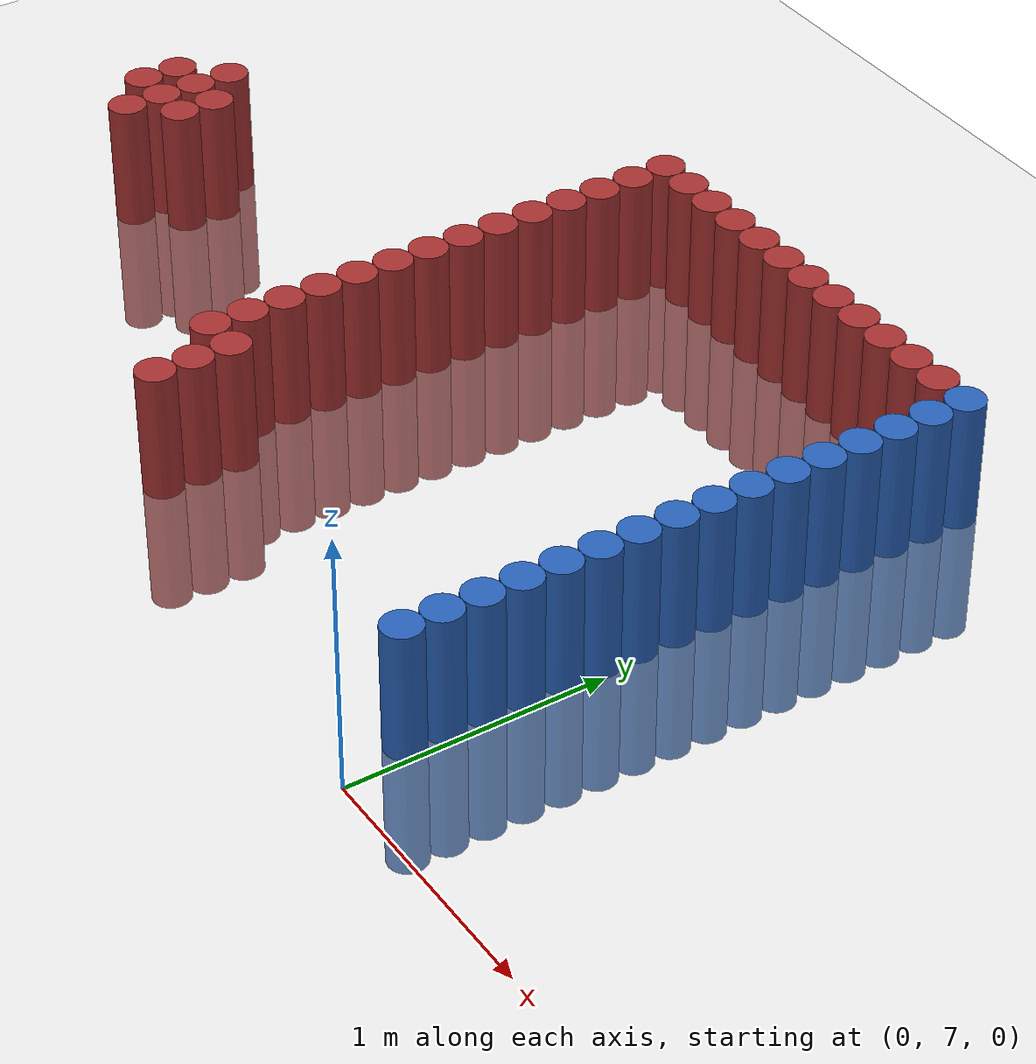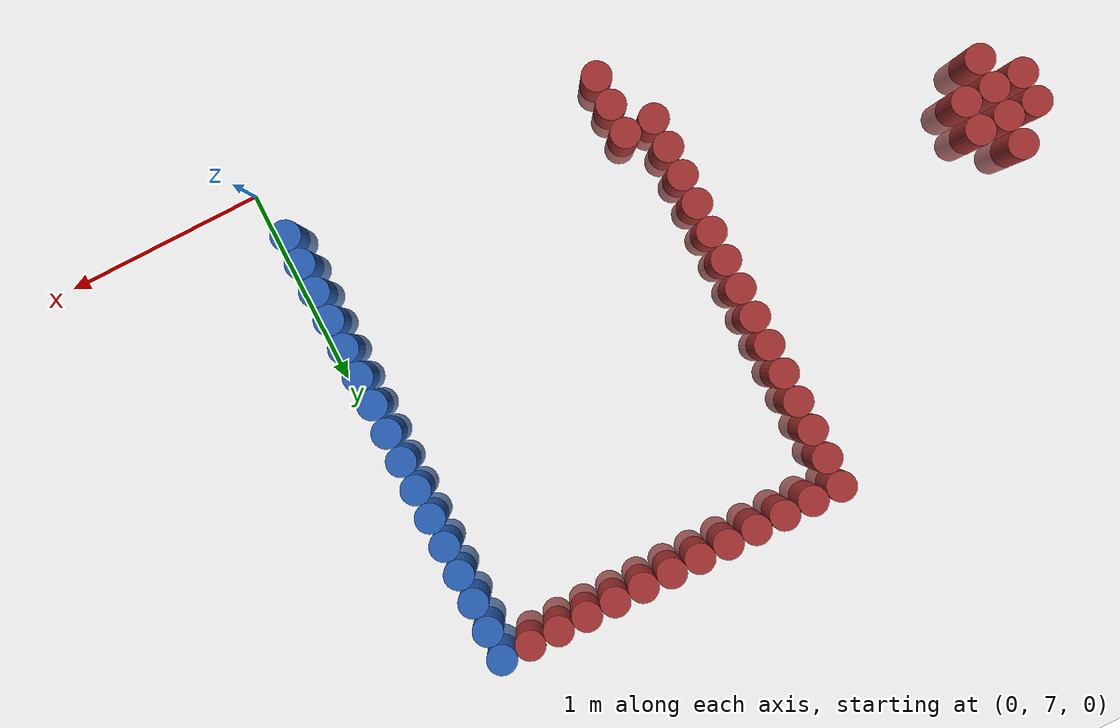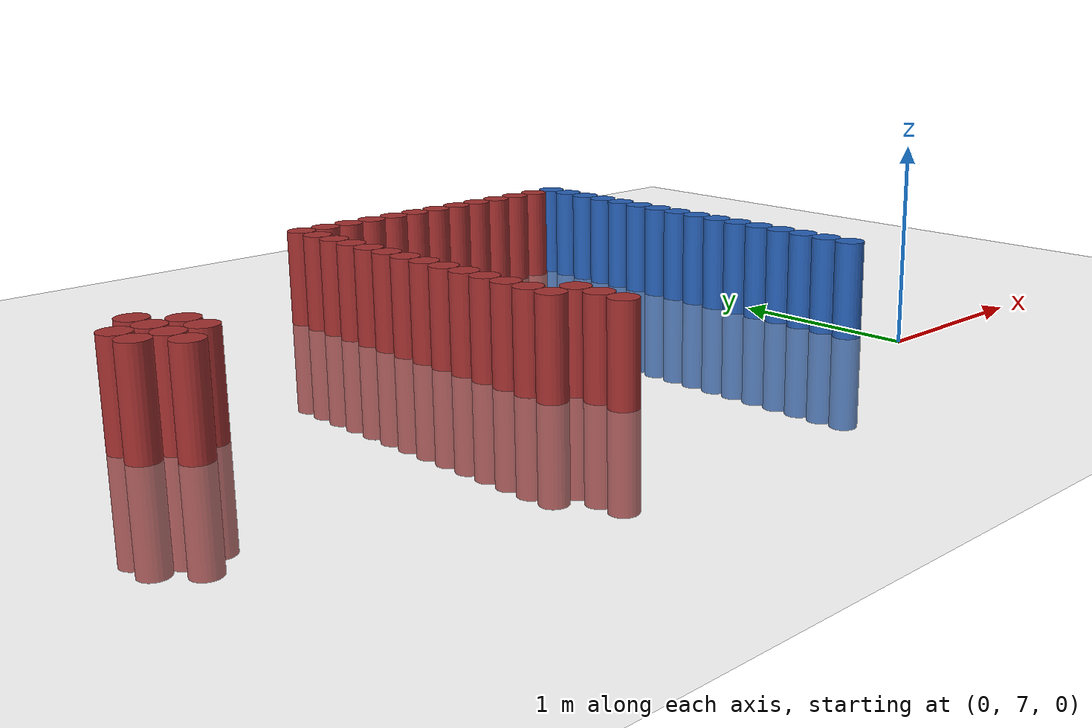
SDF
<sdf version="1.6">
 <world name="default">
  <model name="ground_plane">
   <static>1</static>
   <link name="link">
    <collision name="collision">
     <geometry><plane><normal>0 0 1</normal><size>100 100</size></plane></geometry>
     <surface><friction><ode><mu>100</mu><mu2>50</mu2></ode></friction></surface>
    </collision>
    <visual name="visual">
     <cast_shadows>0</cast_shadows>
     <geometry><plane><normal>0 0 1</normal><size>100 100</size></plane></geometry>
     <material>
      <script><uri>file://media/materials/scripts/gazebo.material</uri><name>Gazebo/Grey</name></script>
     </material>
    </visual>
   </link>
  </model>
  <model name="unit_cylinder_257">
   <static>1</static>
   <pose>-3.525000 8.175000 0.000000 0.000000 0.000000 0.000000</pose>
   <link name="link">
    <inertial>
     <mass>1</mass>
     <inertia><ixx>0.145833</ixx><ixy>0</ixy><ixz>0</ixz><iyy>0.145833</iyy><iyz>0</iyz><izz>0.125</izz></inertia>
    </inertial>
    <collision name="collision">
     <geometry><cylinder><radius>0.075000</radius><length>1</length></cylinder></geometry>
    </collision>
    <visual name="visual">
     <geometry><cylinder><radius>0.075000</radius><length>1</length></cylinder></geometry>
     <material>
      <ambient>0.648000 0.192000 0.192000 1</ambient>
      <diffuse>0.648000 0.192000 0.192000 1</diffuse>
     </material>
     <material>
      <script><name>Gazebo/Grey</name><uri>file://media/materials/scripts/gazebo.material</uri></script>
     </material>
    </visual>
   </link>
  </model>
  <model name="unit_cylinder_258">
   <static>1</static>
   <pose>-3.525000 8.325000 0.000000 0.000000 0.000000 0.000000</pose>
   <link name="link">
    <inertial>
     <mass>1</mass>
     <inertia><ixx>0.145833</ixx><ixy>0</ixy><ixz>0</ixz><iyy>0.145833</iyy><iyz>0</iyz><izz>0.125</izz></inertia>
    </inertial>
    <collision name="collision">
     <geometry><cylinder><radius>0.075000</radius><length>1</length></cylinder></geometry>
    </collision>
    <visual name="visual">
     <geometry><cylinder><radius>0.075000</radius><length>1</length></cylinder></geometry>
     <material>
      <ambient>0.648000 0.192000 0.192000 1</ambient>
      <diffuse>0.648000 0.192000 0.192000 1</diffuse>
     </material>
     <material>
      <script><name>Gazebo/Grey</name><uri>file://media/materials/scripts/gazebo.material</uri></script>
     </material>
    </visual>
   </link>
  </model>
  <model name="unit_cylinder_263">
   <static>1</static>
   <pose>-3.375000 8.025000 0.000000 0.000000 0.000000 0.000000</pose>
   <link name="link">
    <inertial>
     <mass>1</mass>
     <inertia><ixx>0.145833</ixx><ixy>0</ixy><ixz>0</ixz><iyy>0.145833</iyy><iyz>0</iyz><izz>0.125</izz></inertia>
    </inertial>
    <collision name="collision">
     <geometry><cylinder><radius>0.075000</radius><length>1</length></cylinder></geometry>
    </collision>
    <visual name="visual">
     <geometry><cylinder><radius>0.075000</radius><length>1</length></cylinder></geometry>
     <material>
      <ambient>0.648000 0.192000 0.192000 1</ambient>
      <diffuse>0.648000 0.192000 0.192000 1</diffuse>
     </material>
     <material>
      <script><name>Gazebo/Grey</name><uri>file://media/materials/scripts/gazebo.material</uri></script>
     </material>
    </visual>
   </link>
  </model>
  <model name="unit_cylinder_264">
   <static>1</static>
   <pose>-3.375000 8.175000 0.000000 0.000000 0.000000 0.000000</pose>
   <link name="link">
    <inertial>
     <mass>1</mass>
     <inertia><ixx>0.145833</ixx><ixy>0</ixy><ixz>0</ixz><iyy>0.145833</iyy><iyz>0</iyz><izz>0.125</izz></inertia>
    </inertial>
    <collision name="collision">
     <geometry><cylinder><radius>0.075000</radius><length>1</length></cylinder></geometry>
    </collision>
    <visual name="visual">
     <geometry><cylinder><radius>0.075000</radius><length>1</length></cylinder></geometry>
     <material>
      <ambient>0.648000 0.192000 0.192000 1</ambient>
      <diffuse>0.648000 0.192000 0.192000 1</diffuse>
     </material>
     <material>
      <script><name>Gazebo/Grey</name><uri>file://media/materials/scripts/gazebo.material</uri></script>
     </material>
    </visual>
   </link>
  </model>
  <model name="unit_cylinder_265">
   <static>1</static>
   <pose>-3.375000 8.325000 0.000000 0.000000 0.000000 0.000000</pose>
   <link name="link">
    <inertial>
     <mass>1</mass>
     <inertia><ixx>0.145833</ixx><ixy>0</ixy><ixz>0</ixz><iyy>0.145833</iyy><iyz>0</iyz><izz>0.125</izz></inertia>
    </inertial>
    <collision name="collision">
     <geometry><cylinder><radius>0.075000</radius><length>1</length></cylinder></geometry>
    </collision>
    <visual name="visual">
     <geometry><cylinder><radius>0.075000</radius><length>1</length></cylinder></geometry>
     <material>
      <ambient>0.648000 0.192000 0.192000 1</ambient>
      <diffuse>0.648000 0.192000 0.192000 1</diffuse>
     </material>
     <material>
      <script><name>Gazebo/Grey</name><uri>file://media/materials/scripts/gazebo.material</uri></script>
     </material>
    </visual>
   </link>
  </model>
  <model name="unit_cylinder_266">
   <static>1</static>
   <pose>-3.375000 8.475000 0.000000 0.000000 0.000000 0.000000</pose>
   <link name="link">
    <inertial>
     <mass>1</mass>
     <inertia><ixx>0.145833</ixx><ixy>0</ixy><ixz>0</ixz><iyy>0.145833</iyy><iyz>0</iyz><izz>0.125</izz></inertia>
    </inertial>
    <collision name="collision">
     <geometry><cylinder><radius>0.075000</radius><length>1</length></cylinder></geometry>
    </collision>
    <visual name="visual">
     <geometry><cylinder><radius>0.075000</radius><length>1</length></cylinder></geometry>
     <material>
      <ambient>0.648000 0.192000 0.192000 1</ambient>
      <diffuse>0.648000 0.192000 0.192000 1</diffuse>
     </material>
     <material>
      <script><name>Gazebo/Grey</name><uri>file://media/materials/scripts/gazebo.material</uri></script>
     </material>
    </visual>
   </link>
  </model>
  <model name="unit_cylinder_272">
   <static>1</static>
   <pose>-3.225000 8.175000 0.000000 0.000000 0.000000 0.000000</pose>
   <link name="link">
    <inertial>
     <mass>1</mass>
     <inertia><ixx>0.145833</ixx><ixy>0</ixy><ixz>0</ixz><iyy>0.145833</iyy><iyz>0</iyz><izz>0.125</izz></inertia>
    </inertial>
    <collision name="collision">
     <geometry><cylinder><radius>0.075000</radius><length>1</length></cylinder></geometry>
    </collision>
    <visual name="visual">
     <geometry><cylinder><radius>0.075000</radius><length>1</length></cylinder></geometry>
     <material>
      <ambient>0.648000 0.192000 0.192000 1</ambient>
      <diffuse>0.648000 0.192000 0.192000 1</diffuse>
     </material>
     <material>
      <script><name>Gazebo/Grey</name><uri>file://media/materials/scripts/gazebo.material</uri></script>
     </material>
    </visual>
   </link>
  </model>
  <model name="unit_cylinder_273">
   <static>1</static>
   <pose>-3.225000 8.325000 0.000000 0.000000 0.000000 0.000000</pose>
   <link name="link">
    <inertial>
     <mass>1</mass>
     <inertia><ixx>0.145833</ixx><ixy>0</ixy><ixz>0</ixz><iyy>0.145833</iyy><iyz>0</iyz><izz>0.125</izz></inertia>
    </inertial>
    <collision name="collision">
     <geometry><cylinder><radius>0.075000</radius><length>1</length></cylinder></geometry>
    </collision>
    <visual name="visual">
     <geometry><cylinder><radius>0.075000</radius><length>1</length></cylinder></geometry>
     <material>
      <ambient>0.648000 0.192000 0.192000 1</ambient>
      <diffuse>0.648000 0.192000 0.192000 1</diffuse>
     </material>
     <material>
      <script><name>Gazebo/Grey</name><uri>file://media/materials/scripts/gazebo.material</uri></script>
     </material>
    </visual>
   </link>
  </model>
  <model name="unit_cylinder_277">
   <static>1</static>
   <pose>-1.875000 7.575000 0.000000 0.000000 0.000000 0.000000</pose>
   <link name="link">
    <inertial>
     <mass>1</mass>
     <inertia><ixx>0.145833</ixx><ixy>0</ixy><ixz>0</ixz><iyy>0.145833</iyy><iyz>0</iyz><izz>0.125</izz></inertia>
    </inertial>
    <collision name="collision">
     <geometry><cylinder><radius>0.075000</radius><length>1</length></cylinder></geometry>
    </collision>
    <visual name="visual">
     <geometry><cylinder><radius>0.075000</radius><length>1</length></cylinder></geometry>
     <material>
      <ambient>0.648000 0.192000 0.192000 1</ambient>
      <diffuse>0.648000 0.192000 0.192000 1</diffuse>
     </material>
     <material>
      <script><name>Gazebo/Grey</name><uri>file://media/materials/scripts/gazebo.material</uri></script>
     </material>
    </visual>
   </link>
  </model>
  <model name="unit_cylinder_278">
   <static>1</static>
   <pose>-1.875000 7.725000 0.000000 0.000000 0.000000 0.000000</pose>
   <link name="link">
    <inertial>
     <mass>1</mass>
     <inertia><ixx>0.145833</ixx><ixy>0</ixy><ixz>0</ixz><iyy>0.145833</iyy><iyz>0</iyz><izz>0.125</izz></inertia>
    </inertial>
    <collision name="collision">
     <geometry><cylinder><radius>0.075000</radius><length>1</length></cylinder></geometry>
    </collision>
    <visual name="visual">
     <geometry><cylinder><radius>0.075000</radius><length>1</length></cylinder></geometry>
     <material>
      <ambient>0.648000 0.192000 0.192000 1</ambient>
      <diffuse>0.648000 0.192000 0.192000 1</diffuse>
     </material>
     <material>
      <script><name>Gazebo/Grey</name><uri>file://media/materials/scripts/gazebo.material</uri></script>
     </material>
    </visual>
   </link>
  </model>
  <model name="unit_cylinder_279">
   <static>1</static>
   <pose>-1.875000 7.875000 0.000000 0.000000 0.000000 0.000000</pose>
   <link name="link">
    <inertial>
     <mass>1</mass>
     <inertia><ixx>0.145833</ixx><ixy>0</ixy><ixz>0</ixz><iyy>0.145833</iyy><iyz>0</iyz><izz>0.125</izz></inertia>
    </inertial>
    <collision name="collision">
     <geometry><cylinder><radius>0.075000</radius><length>1</length></cylinder></geometry>
    </collision>
    <visual name="visual">
     <geometry><cylinder><radius>0.075000</radius><length>1</length></cylinder></geometry>
     <material>
      <ambient>0.648000 0.192000 0.192000 1</ambient>
      <diffuse>0.648000 0.192000 0.192000 1</diffuse>
     </material>
     <material>
      <script><name>Gazebo/Grey</name><uri>file://media/materials/scripts/gazebo.material</uri></script>
     </material>
    </visual>
   </link>
  </model>
  <model name="unit_cylinder_280">
   <static>1</static>
   <pose>-1.875000 8.025000 0.000000 0.000000 0.000000 0.000000</pose>
   <link name="link">
    <inertial>
     <mass>1</mass>
     <inertia><ixx>0.145833</ixx><ixy>0</ixy><ixz>0</ixz><iyy>0.145833</iyy><iyz>0</iyz><izz>0.125</izz></inertia>
    </inertial>
    <collision name="collision">
     <geometry><cylinder><radius>0.075000</radius><length>1</length></cylinder></geometry>
    </collision>
    <visual name="visual">
     <geometry><cylinder><radius>0.075000</radius><length>1</length></cylinder></geometry>
     <material>
      <ambient>0.648000 0.192000 0.192000 1</ambient>
      <diffuse>0.648000 0.192000 0.192000 1</diffuse>
     </material>
     <material>
      <script><name>Gazebo/Grey</name><uri>file://media/materials/scripts/gazebo.material</uri></script>
     </material>
    </visual>
   </link>
  </model>
  <model name="unit_cylinder_281">
   <static>1</static>
   <pose>-1.875000 8.175000 0.000000 0.000000 0.000000 0.000000</pose>
   <link name="link">
    <inertial>
     <mass>1</mass>
     <inertia><ixx>0.145833</ixx><ixy>0</ixy><ixz>0</ixz><iyy>0.145833</iyy><iyz>0</iyz><izz>0.125</izz></inertia>
    </inertial>
    <collision name="collision">
     <geometry><cylinder><radius>0.075000</radius><length>1</length></cylinder></geometry>
    </collision>
    <visual name="visual">
     <geometry><cylinder><radius>0.075000</radius><length>1</length></cylinder></geometry>
     <material>
      <ambient>0.648000 0.192000 0.192000 1</ambient>
      <diffuse>0.648000 0.192000 0.192000 1</diffuse>
     </material>
     <material>
      <script><name>Gazebo/Grey</name><uri>file://media/materials/scripts/gazebo.material</uri></script>
     </material>
    </visual>
   </link>
  </model>
  <model name="unit_cylinder_282">
   <static>1</static>
   <pose>-1.875000 8.325000 0.000000 0.000000 0.000000 0.000000</pose>
   <link name="link">
    <inertial>
     <mass>1</mass>
     <inertia><ixx>0.145833</ixx><ixy>0</ixy><ixz>0</ixz><iyy>0.145833</iyy><iyz>0</iyz><izz>0.125</izz></inertia>
    </inertial>
    <collision name="collision">
     <geometry><cylinder><radius>0.075000</radius><length>1</length></cylinder></geometry>
    </collision>
    <visual name="visual">
     <geometry><cylinder><radius>0.075000</radius><length>1</length></cylinder></geometry>
     <material>
      <ambient>0.648000 0.192000 0.192000 1</ambient>
      <diffuse>0.648000 0.192000 0.192000 1</diffuse>
     </material>
     <material>
      <script><name>Gazebo/Grey</name><uri>file://media/materials/scripts/gazebo.material</uri></script>
     </material>
    </visual>
   </link>
  </model>
  <model name="unit_cylinder_283">
   <static>1</static>
   <pose>-1.875000 8.475000 0.000000 0.000000 0.000000 0.000000</pose>
   <link name="link">
    <inertial>
     <mass>1</mass>
     <inertia><ixx>0.145833</ixx><ixy>0</ixy><ixz>0</ixz><iyy>0.145833</iyy><iyz>0</iyz><izz>0.125</izz></inertia>
    </inertial>
    <collision name="collision">
     <geometry><cylinder><radius>0.075000</radius><length>1</length></cylinder></geometry>
    </collision>
    <visual name="visual">
     <geometry><cylinder><radius>0.075000</radius><length>1</length></cylinder></geometry>
     <material>
      <ambient>0.648000 0.192000 0.192000 1</ambient>
      <diffuse>0.648000 0.192000 0.192000 1</diffuse>
     </material>
     <material>
      <script><name>Gazebo/Grey</name><uri>file://media/materials/scripts/gazebo.material</uri></script>
     </material>
    </visual>
   </link>
  </model>
  <model name="unit_cylinder_284">
   <static>1</static>
   <pose>-1.875000 8.625000 0.000000 0.000000 0.000000 0.000000</pose>
   <link name="link">
    <inertial>
     <mass>1</mass>
     <inertia><ixx>0.145833</ixx><ixy>0</ixy><ixz>0</ixz><iyy>0.145833</iyy><iyz>0</iyz><izz>0.125</izz></inertia>
    </inertial>
    <collision name="collision">
     <geometry><cylinder><radius>0.075000</radius><length>1</length></cylinder></geometry>
    </collision>
    <visual name="visual">
     <geometry><cylinder><radius>0.075000</radius><length>1</length></cylinder></geometry>
     <material>
      <ambient>0.648000 0.192000 0.192000 1</ambient>
      <diffuse>0.648000 0.192000 0.192000 1</diffuse>
     </material>
     <material>
      <script><name>Gazebo/Grey</name><uri>file://media/materials/scripts/gazebo.material</uri></script>
     </material>
    </visual>
   </link>
  </model>
  <model name="unit_cylinder_285">
   <static>1</static>
   <pose>-1.875000 8.775000 0.000000 0.000000 0.000000 0.000000</pose>
   <link name="link">
    <inertial>
     <mass>1</mass>
     <inertia><ixx>0.145833</ixx><ixy>0</ixy><ixz>0</ixz><iyy>0.145833</iyy><iyz>0</iyz><izz>0.125</izz></inertia>
    </inertial>
    <collision name="collision">
     <geometry><cylinder><radius>0.075000</radius><length>1</length></cylinder></geometry>
    </collision>
    <visual name="visual">
     <geometry><cylinder><radius>0.075000</radius><length>1</length></cylinder></geometry>
     <material>
      <ambient>0.648000 0.192000 0.192000 1</ambient>
      <diffuse>0.648000 0.192000 0.192000 1</diffuse>
     </material>
     <material>
      <script><name>Gazebo/Grey</name><uri>file://media/materials/scripts/gazebo.material</uri></script>
     </material>
    </visual>
   </link>
  </model>
  <model name="unit_cylinder_286">
   <static>1</static>
   <pose>-1.875000 8.925000 0.000000 0.000000 0.000000 0.000000</pose>
   <link name="link">
    <inertial>
     <mass>1</mass>
     <inertia><ixx>0.145833</ixx><ixy>0</ixy><ixz>0</ixz><iyy>0.145833</iyy><iyz>0</iyz><izz>0.125</izz></inertia>
    </inertial>
    <collision name="collision">
     <geometry><cylinder><radius>0.075000</radius><length>1</length></cylinder></geometry>
    </collision>
    <visual name="visual">
     <geometry><cylinder><radius>0.075000</radius><length>1</length></cylinder></geometry>
     <material>
      <ambient>0.648000 0.192000 0.192000 1</ambient>
      <diffuse>0.648000 0.192000 0.192000 1</diffuse>
     </material>
     <material>
      <script><name>Gazebo/Grey</name><uri>file://media/materials/scripts/gazebo.material</uri></script>
     </material>
    </visual>
   </link>
  </model>
  <model name="unit_cylinder_287">
   <static>1</static>
   <pose>-1.875000 9.075000 0.000000 0.000000 0.000000 0.000000</pose>
   <link name="link">
    <inertial>
     <mass>1</mass>
     <inertia><ixx>0.145833</ixx><ixy>0</ixy><ixz>0</ixz><iyy>0.145833</iyy><iyz>0</iyz><izz>0.125</izz></inertia>
    </inertial>
    <collision name="collision">
     <geometry><cylinder><radius>0.075000</radius><length>1</length></cylinder></geometry>
    </collision>
    <visual name="visual">
     <geometry><cylinder><radius>0.075000</radius><length>1</length></cylinder></geometry>
     <material>
      <ambient>0.648000 0.192000 0.192000 1</ambient>
      <diffuse>0.648000 0.192000 0.192000 1</diffuse>
     </material>
     <material>
      <script><name>Gazebo/Grey</name><uri>file://media/materials/scripts/gazebo.material</uri></script>
     </material>
    </visual>
   </link>
  </model>
  <model name="unit_cylinder_288">
   <static>1</static>
   <pose>-1.875000 9.225000 0.000000 0.000000 0.000000 0.000000</pose>
   <link name="link">
    <inertial>
     <mass>1</mass>
     <inertia><ixx>0.145833</ixx><ixy>0</ixy><ixz>0</ixz><iyy>0.145833</iyy><iyz>0</iyz><izz>0.125</izz></inertia>
    </inertial>
    <collision name="collision">
     <geometry><cylinder><radius>0.075000</radius><length>1</length></cylinder></geometry>
    </collision>
    <visual name="visual">
     <geometry><cylinder><radius>0.075000</radius><length>1</length></cylinder></geometry>
     <material>
      <ambient>0.648000 0.192000 0.192000 1</ambient>
      <diffuse>0.648000 0.192000 0.192000 1</diffuse>
     </material>
     <material>
      <script><name>Gazebo/Grey</name><uri>file://media/materials/scripts/gazebo.material</uri></script>
     </material>
    </visual>
   </link>
  </model>
  <model name="unit_cylinder_289">
   <static>1</static>
   <pose>-1.875000 9.375000 0.000000 0.000000 0.000000 0.000000</pose>
   <link name="link">
    <inertial>
     <mass>1</mass>
     <inertia><ixx>0.145833</ixx><ixy>0</ixy><ixz>0</ixz><iyy>0.145833</iyy><iyz>0</iyz><izz>0.125</izz></inertia>
    </inertial>
    <collision name="collision">
     <geometry><cylinder><radius>0.075000</radius><length>1</length></cylinder></geometry>
    </collision>
    <visual name="visual">
     <geometry><cylinder><radius>0.075000</radius><length>1</length></cylinder></geometry>
     <material>
      <ambient>0.648000 0.192000 0.192000 1</ambient>
      <diffuse>0.648000 0.192000 0.192000 1</diffuse>
     </material>
     <material>
      <script><name>Gazebo/Grey</name><uri>file://media/materials/scripts/gazebo.material</uri></script>
     </material>
    </visual>
   </link>
  </model>
  <model name="unit_cylinder_290">
   <static>1</static>
   <pose>-1.875000 9.525000 0.000000 0.000000 0.000000 0.000000</pose>
   <link name="link">
    <inertial>
     <mass>1</mass>
     <inertia><ixx>0.145833</ixx><ixy>0</ixy><ixz>0</ixz><iyy>0.145833</iyy><iyz>0</iyz><izz>0.125</izz></inertia>
    </inertial>
    <collision name="collision">
     <geometry><cylinder><radius>0.075000</radius><length>1</length></cylinder></geometry>
    </collision>
    <visual name="visual">
     <geometry><cylinder><radius>0.075000</radius><length>1</length></cylinder></geometry>
     <material>
      <ambient>0.648000 0.192000 0.192000 1</ambient>
      <diffuse>0.648000 0.192000 0.192000 1</diffuse>
     </material>
     <material>
      <script><name>Gazebo/Grey</name><uri>file://media/materials/scripts/gazebo.material</uri></script>
     </material>
    </visual>
   </link>
  </model>
  <model name="unit_cylinder_305">
   <static>1</static>
   <pose>-1.725000 7.275000 0.000000 0.000000 0.000000 0.000000</pose>
   <link name="link">
    <inertial>
     <mass>1</mass>
     <inertia><ixx>0.145833</ixx><ixy>0</ixy><ixz>0</ixz><iyy>0.145833</iyy><iyz>0</iyz><izz>0.125</izz></inertia>
    </inertial>
    <collision name="collision">
     <geometry><cylinder><radius>0.075000</radius><length>1</length></cylinder></geometry>
    </collision>
    <visual name="visual">
     <geometry><cylinder><radius>0.075000</radius><length>1</length></cylinder></geometry>
     <material>
      <ambient>0.648000 0.192000 0.192000 1</ambient>
      <diffuse>0.648000 0.192000 0.192000 1</diffuse>
     </material>
     <material>
      <script><name>Gazebo/Grey</name><uri>file://media/materials/scripts/gazebo.material</uri></script>
     </material>
    </visual>
   </link>
  </model>
  <model name="unit_cylinder_306">
   <static>1</static>
   <pose>-1.725000 7.425000 0.000000 0.000000 0.000000 0.000000</pose>
   <link name="link">
    <inertial>
     <mass>1</mass>
     <inertia><ixx>0.145833</ixx><ixy>0</ixy><ixz>0</ixz><iyy>0.145833</iyy><iyz>0</iyz><izz>0.125</izz></inertia>
    </inertial>
    <collision name="collision">
     <geometry><cylinder><radius>0.075000</radius><length>1</length></cylinder></geometry>
    </collision>
    <visual name="visual">
     <geometry><cylinder><radius>0.075000</radius><length>1</length></cylinder></geometry>
     <material>
      <ambient>0.648000 0.192000 0.192000 1</ambient>
      <diffuse>0.648000 0.192000 0.192000 1</diffuse>
     </material>
     <material>
      <script><name>Gazebo/Grey</name><uri>file://media/materials/scripts/gazebo.material</uri></script>
     </material>
    </visual>
   </link>
  </model>
  <model name="unit_cylinder_307">
   <static>1</static>
   <pose>-1.725000 7.575000 0.000000 0.000000 0.000000 0.000000</pose>
   <link name="link">
    <inertial>
     <mass>1</mass>
     <inertia><ixx>0.145833</ixx><ixy>0</ixy><ixz>0</ixz><iyy>0.145833</iyy><iyz>0</iyz><izz>0.125</izz></inertia>
    </inertial>
    <collision name="collision">
     <geometry><cylinder><radius>0.075000</radius><length>1</length></cylinder></geometry>
    </collision>
    <visual name="visual">
     <geometry><cylinder><radius>0.075000</radius><length>1</length></cylinder></geometry>
     <material>
      <ambient>0.648000 0.192000 0.192000 1</ambient>
      <diffuse>0.648000 0.192000 0.192000 1</diffuse>
     </material>
     <material>
      <script><name>Gazebo/Grey</name><uri>file://media/materials/scripts/gazebo.material</uri></script>
     </material>
    </visual>
   </link>
  </model>
  <model name="unit_cylinder_308">
   <static>1</static>
   <pose>-1.725000 9.525000 0.000000 0.000000 0.000000 0.000000</pose>
   <link name="link">
    <inertial>
     <mass>1</mass>
     <inertia><ixx>0.145833</ixx><ixy>0</ixy><ixz>0</ixz><iyy>0.145833</iyy><iyz>0</iyz><izz>0.125</izz></inertia>
    </inertial>
    <collision name="collision">
     <geometry><cylinder><radius>0.075000</radius><length>1</length></cylinder></geometry>
    </collision>
    <visual name="visual">
     <geometry><cylinder><radius>0.075000</radius><length>1</length></cylinder></geometry>
     <material>
      <ambient>0.648000 0.192000 0.192000 1</ambient>
      <diffuse>0.648000 0.192000 0.192000 1</diffuse>
     </material>
     <material>
      <script><name>Gazebo/Grey</name><uri>file://media/materials/scripts/gazebo.material</uri></script>
     </material>
    </visual>
   </link>
  </model>
  <model name="unit_cylinder_310">
   <static>1</static>
   <pose>-1.575000 9.525000 0.000000 0.000000 0.000000 0.000000</pose>
   <link name="link">
    <inertial>
     <mass>1</mass>
     <inertia><ixx>0.145833</ixx><ixy>0</ixy><ixz>0</ixz><iyy>0.145833</iyy><iyz>0</iyz><izz>0.125</izz></inertia>
    </inertial>
    <collision name="collision">
     <geometry><cylinder><radius>0.075000</radius><length>1</length></cylinder></geometry>
    </collision>
    <visual name="visual">
     <geometry><cylinder><radius>0.075000</radius><length>1</length></cylinder></geometry>
     <material>
      <ambient>0.648000 0.192000 0.192000 1</ambient>
      <diffuse>0.648000 0.192000 0.192000 1</diffuse>
     </material>
     <material>
      <script><name>Gazebo/Grey</name><uri>file://media/materials/scripts/gazebo.material</uri></script>
     </material>
    </visual>
   </link>
  </model>
  <model name="unit_cylinder_312">
   <static>1</static>
   <pose>-1.425000 9.525000 0.000000 0.000000 0.000000 0.000000</pose>
   <link name="link">
    <inertial>
     <mass>1</mass>
     <inertia><ixx>0.145833</ixx><ixy>0</ixy><ixz>0</ixz><iyy>0.145833</iyy><iyz>0</iyz><izz>0.125</izz></inertia>
    </inertial>
    <collision name="collision">
     <geometry><cylinder><radius>0.075000</radius><length>1</length></cylinder></geometry>
    </collision>
    <visual name="visual">
     <geometry><cylinder><radius>0.075000</radius><length>1</length></cylinder></geometry>
     <material>
      <ambient>0.648000 0.192000 0.192000 1</ambient>
      <diffuse>0.648000 0.192000 0.192000 1</diffuse>
     </material>
     <material>
      <script><name>Gazebo/Grey</name><uri>file://media/materials/scripts/gazebo.material</uri></script>
     </material>
    </visual>
   </link>
  </model>
  <model name="unit_cylinder_314">
   <static>1</static>
   <pose>-1.275000 9.525000 0.000000 0.000000 0.000000 0.000000</pose>
   <link name="link">
    <inertial>
     <mass>1</mass>
     <inertia><ixx>0.145833</ixx><ixy>0</ixy><ixz>0</ixz><iyy>0.145833</iyy><iyz>0</iyz><izz>0.125</izz></inertia>
    </inertial>
    <collision name="collision">
     <geometry><cylinder><radius>0.075000</radius><length>1</length></cylinder></geometry>
    </collision>
    <visual name="visual">
     <geometry><cylinder><radius>0.075000</radius><length>1</length></cylinder></geometry>
     <material>
      <ambient>0.648000 0.192000 0.192000 1</ambient>
      <diffuse>0.648000 0.192000 0.192000 1</diffuse>
     </material>
     <material>
      <script><name>Gazebo/Grey</name><uri>file://media/materials/scripts/gazebo.material</uri></script>
     </material>
    </visual>
   </link>
  </model>
  <model name="unit_cylinder_316">
   <static>1</static>
   <pose>-1.125000 9.525000 0.000000 0.000000 0.000000 0.000000</pose>
   <link name="link">
    <inertial>
     <mass>1</mass>
     <inertia><ixx>0.145833</ixx><ixy>0</ixy><ixz>0</ixz><iyy>0.145833</iyy><iyz>0</iyz><izz>0.125</izz></inertia>
    </inertial>
    <collision name="collision">
     <geometry><cylinder><radius>0.075000</radius><length>1</length></cylinder></geometry>
    </collision>
    <visual name="visual">
     <geometry><cylinder><radius>0.075000</radius><length>1</length></cylinder></geometry>
     <material>
      <ambient>0.648000 0.192000 0.192000 1</ambient>
      <diffuse>0.648000 0.192000 0.192000 1</diffuse>
     </material>
     <material>
      <script><name>Gazebo/Grey</name><uri>file://media/materials/scripts/gazebo.material</uri></script>
     </material>
    </visual>
   </link>
  </model>
  <model name="unit_cylinder_318">
   <static>1</static>
   <pose>-0.975000 9.525000 0.000000 0.000000 0.000000 0.000000</pose>
   <link name="link">
    <inertial>
     <mass>1</mass>
     <inertia><ixx>0.145833</ixx><ixy>0</ixy><ixz>0</ixz><iyy>0.145833</iyy><iyz>0</iyz><izz>0.125</izz></inertia>
    </inertial>
    <collision name="collision">
     <geometry><cylinder><radius>0.075000</radius><length>1</length></cylinder></geometry>
    </collision>
    <visual name="visual">
     <geometry><cylinder><radius>0.075000</radius><length>1</length></cylinder></geometry>
     <material>
      <ambient>0.648000 0.192000 0.192000 1</ambient>
      <diffuse>0.648000 0.192000 0.192000 1</diffuse>
     </material>
     <material>
      <script><name>Gazebo/Grey</name><uri>file://media/materials/scripts/gazebo.material</uri></script>
     </material>
    </visual>
   </link>
  </model>
  <model name="unit_cylinder_320">
   <static>1</static>
   <pose>-0.825000 9.525000 0.000000 0.000000 0.000000 0.000000</pose>
   <link name="link">
    <inertial>
     <mass>1</mass>
     <inertia><ixx>0.145833</ixx><ixy>0</ixy><ixz>0</ixz><iyy>0.145833</iyy><iyz>0</iyz><izz>0.125</izz></inertia>
    </inertial>
    <collision name="collision">
     <geometry><cylinder><radius>0.075000</radius><length>1</length></cylinder></geometry>
    </collision>
    <visual name="visual">
     <geometry><cylinder><radius>0.075000</radius><length>1</length></cylinder></geometry>
     <material>
      <ambient>0.648000 0.192000 0.192000 1</ambient>
      <diffuse>0.648000 0.192000 0.192000 1</diffuse>
     </material>
     <material>
      <script><name>Gazebo/Grey</name><uri>file://media/materials/scripts/gazebo.material</uri></script>
     </material>
    </visual>
   </link>
  </model>
  <model name="unit_cylinder_322">
   <static>1</static>
   <pose>-0.675000 9.525000 0.000000 0.000000 0.000000 0.000000</pose>
   <link name="link">
    <inertial>
     <mass>1</mass>
     <inertia><ixx>0.145833</ixx><ixy>0</ixy><ixz>0</ixz><iyy>0.145833</iyy><iyz>0</iyz><izz>0.125</izz></inertia>
    </inertial>
    <collision name="collision">
     <geometry><cylinder><radius>0.075000</radius><length>1</length></cylinder></geometry>
    </collision>
    <visual name="visual">
     <geometry><cylinder><radius>0.075000</radius><length>1</length></cylinder></geometry>
     <material>
      <ambient>0.648000 0.192000 0.192000 1</ambient>
      <diffuse>0.648000 0.192000 0.192000 1</diffuse>
     </material>
     <material>
      <script><name>Gazebo/Grey</name><uri>file://media/materials/scripts/gazebo.material</uri></script>
     </material>
    </visual>
   </link>
  </model>
  <model name="unit_cylinder_324">
   <static>1</static>
   <pose>-0.525000 9.525000 0.000000 0.000000 0.000000 0.000000</pose>
   <link name="link">
    <inertial>
     <mass>1</mass>
     <inertia><ixx>0.145833</ixx><ixy>0</ixy><ixz>0</ixz><iyy>0.145833</iyy><iyz>0</iyz><izz>0.125</izz></inertia>
    </inertial>
    <collision name="collision">
     <geometry><cylinder><radius>0.075000</radius><length>1</length></cylinder></geometry>
    </collision>
    <visual name="visual">
     <geometry><cylinder><radius>0.075000</radius><length>1</length></cylinder></geometry>
     <material>
      <ambient>0.648000 0.192000 0.192000 1</ambient>
      <diffuse>0.648000 0.192000 0.192000 1</diffuse>
     </material>
     <material>
      <script><name>Gazebo/Grey</name><uri>file://media/materials/scripts/gazebo.material</uri></script>
     </material>
    </visual>
   </link>
  </model>
  <model name="unit_cylinder_326">
   <static>1</static>
   <pose>-0.375000 9.525000 0.000000 0.000000 0.000000 0.000000</pose>
   <link name="link">
    <inertial>
     <mass>1</mass>
     <inertia><ixx>0.145833</ixx><ixy>0</ixy><ixz>0</ixz><iyy>0.145833</iyy><iyz>0</iyz><izz>0.125</izz></inertia>
    </inertial>
    <collision name="collision">
     <geometry><cylinder><radius>0.075000</radius><length>1</length></cylinder></geometry>
    </collision>
    <visual name="visual">
     <geometry><cylinder><radius>0.075000</radius><length>1</length></cylinder></geometry>
     <material>
      <ambient>0.648000 0.192000 0.192000 1</ambient>
      <diffuse>0.648000 0.192000 0.192000 1</diffuse>
     </material>
     <material>
      <script><name>Gazebo/Grey</name><uri>file://media/materials/scripts/gazebo.material</uri></script>
     </material>
    </visual>
   </link>
  </model>
  <model name="unit_cylinder_328">
   <static>1</static>
   <pose>-0.225000 9.525000 0.000000 0.000000 0.000000 0.000000</pose>
   <link name="link">
    <inertial>
     <mass>1</mass>
     <inertia><ixx>0.145833</ixx><ixy>0</ixy><ixz>0</ixz><iyy>0.145833</iyy><iyz>0</iyz><izz>0.125</izz></inertia>
    </inertial>
    <collision name="collision">
     <geometry><cylinder><radius>0.075000</radius><length>1</length></cylinder></geometry>
    </collision>
    <visual name="visual">
     <geometry><cylinder><radius>0.075000</radius><length>1</length></cylinder></geometry>
     <material>
      <ambient>0.648000 0.192000 0.192000 1</ambient>
      <diffuse>0.648000 0.192000 0.192000 1</diffuse>
     </material>
     <material>
      <script><name>Gazebo/Grey</name><uri>file://media/materials/scripts/gazebo.material</uri></script>
     </material>
    </visual>
   </link>
  </model>
  <model name="unit_cylinder_343">
   <static>1</static>
   <pose>-0.075000 7.275000 0.000000 0.000000 0.000000 0.000000</pose>
   <link name="link">
    <inertial>
     <mass>1</mass>
     <inertia><ixx>0.145833</ixx><ixy>0</ixy><ixz>0</ixz><iyy>0.145833</iyy><iyz>0</iyz><izz>0.125</izz></inertia>
    </inertial>
    <collision name="collision">
     <geometry><cylinder><radius>0.075000</radius><length>1</length></cylinder></geometry>
    </collision>
    <visual name="visual">
     <geometry><cylinder><radius>0.075000</radius><length>1</length></cylinder></geometry>
     <material>
      <ambient>0.152000 0.379000 0.720000 1</ambient>
      <diffuse>0.152000 0.379000 0.720000 1</diffuse>
     </material>
     <material>
      <script><name>Gazebo/Grey</name><uri>file://media/materials/scripts/gazebo.material</uri></script>
     </material>
    </visual>
   </link>
  </model>
  <model name="unit_cylinder_344">
   <static>1</static>
   <pose>-0.075000 7.425000 0.000000 0.000000 0.000000 0.000000</pose>
   <link name="link">
    <inertial>
     <mass>1</mass>
     <inertia><ixx>0.145833</ixx><ixy>0</ixy><ixz>0</ixz><iyy>0.145833</iyy><iyz>0</iyz><izz>0.125</izz></inertia>
    </inertial>
    <collision name="collision">
     <geometry><cylinder><radius>0.075000</radius><length>1</length></cylinder></geometry>
    </collision>
    <visual name="visual">
     <geometry><cylinder><radius>0.075000</radius><length>1</length></cylinder></geometry>
     <material>
      <ambient>0.152000 0.379000 0.720000 1</ambient>
      <diffuse>0.152000 0.379000 0.720000 1</diffuse>
     </material>
     <material>
      <script><name>Gazebo/Grey</name><uri>file://media/materials/scripts/gazebo.material</uri></script>
     </material>
    </visual>
   </link>
  </model>
  <model name="unit_cylinder_345">
   <static>1</static>
   <pose>-0.075000 7.575000 0.000000 0.000000 0.000000 0.000000</pose>
   <link name="link">
    <inertial>
     <mass>1</mass>
     <inertia><ixx>0.145833</ixx><ixy>0</ixy><ixz>0</ixz><iyy>0.145833</iyy><iyz>0</iyz><izz>0.125</izz></inertia>
    </inertial>
    <collision name="collision">
     <geometry><cylinder><radius>0.075000</radius><length>1</length></cylinder></geometry>
    </collision>
    <visual name="visual">
     <geometry><cylinder><radius>0.075000</radius><length>1</length></cylinder></geometry>
     <material>
      <ambient>0.152000 0.379000 0.720000 1</ambient>
      <diffuse>0.152000 0.379000 0.720000 1</diffuse>
     </material>
     <material>
      <script><name>Gazebo/Grey</name><uri>file://media/materials/scripts/gazebo.material</uri></script>
     </material>
    </visual>
   </link>
  </model>
  <model name="unit_cylinder_346">
   <static>1</static>
   <pose>-0.075000 7.725000 0.000000 0.000000 0.000000 0.000000</pose>
   <link name="link">
    <inertial>
     <mass>1</mass>
     <inertia><ixx>0.145833</ixx><ixy>0</ixy><ixz>0</ixz><iyy>0.145833</iyy><iyz>0</iyz><izz>0.125</izz></inertia>
    </inertial>
    <collision name="collision">
     <geometry><cylinder><radius>0.075000</radius><length>1</length></cylinder></geometry>
    </collision>
    <visual name="visual">
     <geometry><cylinder><radius>0.075000</radius><length>1</length></cylinder></geometry>
     <material>
      <ambient>0.152000 0.379000 0.720000 1</ambient>
      <diffuse>0.152000 0.379000 0.720000 1</diffuse>
     </material>
     <material>
      <script><name>Gazebo/Grey</name><uri>file://media/materials/scripts/gazebo.material</uri></script>
     </material>
    </visual>
   </link>
  </model>
  <model name="unit_cylinder_347">
   <static>1</static>
   <pose>-0.075000 7.875000 0.000000 0.000000 0.000000 0.000000</pose>
   <link name="link">
    <inertial>
     <mass>1</mass>
     <inertia><ixx>0.145833</ixx><ixy>0</ixy><ixz>0</ixz><iyy>0.145833</iyy><iyz>0</iyz><izz>0.125</izz></inertia>
    </inertial>
    <collision name="collision">
     <geometry><cylinder><radius>0.075000</radius><length>1</length></cylinder></geometry>
    </collision>
    <visual name="visual">
     <geometry><cylinder><radius>0.075000</radius><length>1</length></cylinder></geometry>
     <material>
      <ambient>0.152000 0.379000 0.720000 1</ambient>
      <diffuse>0.152000 0.379000 0.720000 1</diffuse>
     </material>
     <material>
      <script><name>Gazebo/Grey</name><uri>file://media/materials/scripts/gazebo.material</uri></script>
     </material>
    </visual>
   </link>
  </model>
  <model name="unit_cylinder_348">
   <static>1</static>
   <pose>-0.075000 8.025000 0.000000 0.000000 0.000000 0.000000</pose>
   <link name="link">
    <inertial>
     <mass>1</mass>
     <inertia><ixx>0.145833</ixx><ixy>0</ixy><ixz>0</ixz><iyy>0.145833</iyy><iyz>0</iyz><izz>0.125</izz></inertia>
    </inertial>
    <collision name="collision">
     <geometry><cylinder><radius>0.075000</radius><length>1</length></cylinder></geometry>
    </collision>
    <visual name="visual">
     <geometry><cylinder><radius>0.075000</radius><length>1</length></cylinder></geometry>
     <material>
      <ambient>0.152000 0.379000 0.720000 1</ambient>
      <diffuse>0.152000 0.379000 0.720000 1</diffuse>
     </material>
     <material>
      <script><name>Gazebo/Grey</name><uri>file://media/materials/scripts/gazebo.material</uri></script>
     </material>
    </visual>
   </link>
  </model>
  <model name="unit_cylinder_349">
   <static>1</static>
   <pose>-0.075000 8.175000 0.000000 0.000000 0.000000 0.000000</pose>
   <link name="link">
    <inertial>
     <mass>1</mass>
     <inertia><ixx>0.145833</ixx><ixy>0</ixy><ixz>0</ixz><iyy>0.145833</iyy><iyz>0</iyz><izz>0.125</izz></inertia>
    </inertial>
    <collision name="collision">
     <geometry><cylinder><radius>0.075000</radius><length>1</length></cylinder></geometry>
    </collision>
    <visual name="visual">
     <geometry><cylinder><radius>0.075000</radius><length>1</length></cylinder></geometry>
     <material>
      <ambient>0.152000 0.379000 0.720000 1</ambient>
      <diffuse>0.152000 0.379000 0.720000 1</diffuse>
     </material>
     <material>
      <script><name>Gazebo/Grey</name><uri>file://media/materials/scripts/gazebo.material</uri></script>
     </material>
    </visual>
   </link>
  </model>
  <model name="unit_cylinder_350">
   <static>1</static>
   <pose>-0.075000 8.325000 0.000000 0.000000 0.000000 0.000000</pose>
   <link name="link">
    <inertial>
     <mass>1</mass>
     <inertia><ixx>0.145833</ixx><ixy>0</ixy><ixz>0</ixz><iyy>0.145833</iyy><iyz>0</iyz><izz>0.125</izz></inertia>
    </inertial>
    <collision name="collision">
     <geometry><cylinder><radius>0.075000</radius><length>1</length></cylinder></geometry>
    </collision>
    <visual name="visual">
     <geometry><cylinder><radius>0.075000</radius><length>1</length></cylinder></geometry>
     <material>
      <ambient>0.152000 0.379000 0.720000 1</ambient>
      <diffuse>0.152000 0.379000 0.720000 1</diffuse>
     </material>
     <material>
      <script><name>Gazebo/Grey</name><uri>file://media/materials/scripts/gazebo.material</uri></script>
     </material>
    </visual>
   </link>
  </model>
  <model name="unit_cylinder_351">
   <static>1</static>
   <pose>-0.075000 8.475000 0.000000 0.000000 0.000000 0.000000</pose>
   <link name="link">
    <inertial>
     <mass>1</mass>
     <inertia><ixx>0.145833</ixx><ixy>0</ixy><ixz>0</ixz><iyy>0.145833</iyy><iyz>0</iyz><izz>0.125</izz></inertia>
    </inertial>
    <collision name="collision">
     <geometry><cylinder><radius>0.075000</radius><length>1</length></cylinder></geometry>
    </collision>
    <visual name="visual">
     <geometry><cylinder><radius>0.075000</radius><length>1</length></cylinder></geometry>
     <material>
      <ambient>0.152000 0.379000 0.720000 1</ambient>
      <diffuse>0.152000 0.379000 0.720000 1</diffuse>
     </material>
     <material>
      <script><name>Gazebo/Grey</name><uri>file://media/materials/scripts/gazebo.material</uri></script>
     </material>
    </visual>
   </link>
  </model>
  <model name="unit_cylinder_352">
   <static>1</static>
   <pose>-0.075000 8.625000 0.000000 0.000000 0.000000 0.000000</pose>
   <link name="link">
    <inertial>
     <mass>1</mass>
     <inertia><ixx>0.145833</ixx><ixy>0</ixy><ixz>0</ixz><iyy>0.145833</iyy><iyz>0</iyz><izz>0.125</izz></inertia>
    </inertial>
    <collision name="collision">
     <geometry><cylinder><radius>0.075000</radius><length>1</length></cylinder></geometry>
    </collision>
    <visual name="visual">
     <geometry><cylinder><radius>0.075000</radius><length>1</length></cylinder></geometry>
     <material>
      <ambient>0.152000 0.379000 0.720000 1</ambient>
      <diffuse>0.152000 0.379000 0.720000 1</diffuse>
     </material>
     <material>
      <script><name>Gazebo/Grey</name><uri>file://media/materials/scripts/gazebo.material</uri></script>
     </material>
    </visual>
   </link>
  </model>
  <model name="unit_cylinder_353">
   <static>1</static>
   <pose>-0.075000 8.775000 0.000000 0.000000 0.000000 0.000000</pose>
   <link name="link">
    <inertial>
     <mass>1</mass>
     <inertia><ixx>0.145833</ixx><ixy>0</ixy><ixz>0</ixz><iyy>0.145833</iyy><iyz>0</iyz><izz>0.125</izz></inertia>
    </inertial>
    <collision name="collision">
     <geometry><cylinder><radius>0.075000</radius><length>1</length></cylinder></geometry>
    </collision>
    <visual name="visual">
     <geometry><cylinder><radius>0.075000</radius><length>1</length></cylinder></geometry>
     <material>
      <ambient>0.152000 0.379000 0.720000 1</ambient>
      <diffuse>0.152000 0.379000 0.720000 1</diffuse>
     </material>
     <material>
      <script><name>Gazebo/Grey</name><uri>file://media/materials/scripts/gazebo.material</uri></script>
     </material>
    </visual>
   </link>
  </model>
  <model name="unit_cylinder_354">
   <static>1</static>
   <pose>-0.075000 8.925000 0.000000 0.000000 0.000000 0.000000</pose>
   <link name="link">
    <inertial>
     <mass>1</mass>
     <inertia><ixx>0.145833</ixx><ixy>0</ixy><ixz>0</ixz><iyy>0.145833</iyy><iyz>0</iyz><izz>0.125</izz></inertia>
    </inertial>
    <collision name="collision">
     <geometry><cylinder><radius>0.075000</radius><length>1</length></cylinder></geometry>
    </collision>
    <visual name="visual">
     <geometry><cylinder><radius>0.075000</radius><length>1</length></cylinder></geometry>
     <material>
      <ambient>0.152000 0.379000 0.720000 1</ambient>
      <diffuse>0.152000 0.379000 0.720000 1</diffuse>
     </material>
     <material>
      <script><name>Gazebo/Grey</name><uri>file://media/materials/scripts/gazebo.material</uri></script>
     </material>
    </visual>
   </link>
  </model>
  <model name="unit_cylinder_355">
   <static>1</static>
   <pose>-0.075000 9.075000 0.000000 0.000000 0.000000 0.000000</pose>
   <link name="link">
    <inertial>
     <mass>1</mass>
     <inertia><ixx>0.145833</ixx><ixy>0</ixy><ixz>0</ixz><iyy>0.145833</iyy><iyz>0</iyz><izz>0.125</izz></inertia>
    </inertial>
    <collision name="collision">
     <geometry><cylinder><radius>0.075000</radius><length>1</length></cylinder></geometry>
    </collision>
    <visual name="visual">
     <geometry><cylinder><radius>0.075000</radius><length>1</length></cylinder></geometry>
     <material>
      <ambient>0.152000 0.379000 0.720000 1</ambient>
      <diffuse>0.152000 0.379000 0.720000 1</diffuse>
     </material>
     <material>
      <script><name>Gazebo/Grey</name><uri>file://media/materials/scripts/gazebo.material</uri></script>
     </material>
    </visual>
   </link>
  </model>
  <model name="unit_cylinder_356">
   <static>1</static>
   <pose>-0.075000 9.225000 0.000000 0.000000 0.000000 0.000000</pose>
   <link name="link">
    <inertial>
     <mass>1</mass>
     <inertia><ixx>0.145833</ixx><ixy>0</ixy><ixz>0</ixz><iyy>0.145833</iyy><iyz>0</iyz><izz>0.125</izz></inertia>
    </inertial>
    <collision name="collision">
     <geometry><cylinder><radius>0.075000</radius><length>1</length></cylinder></geometry>
    </collision>
    <visual name="visual">
     <geometry><cylinder><radius>0.075000</radius><length>1</length></cylinder></geometry>
     <material>
      <ambient>0.152000 0.379000 0.720000 1</ambient>
      <diffuse>0.152000 0.379000 0.720000 1</diffuse>
     </material>
     <material>
      <script><name>Gazebo/Grey</name><uri>file://media/materials/scripts/gazebo.material</uri></script>
     </material>
    </visual>
   </link>
  </model>
  <model name="unit_cylinder_357">
   <static>1</static>
   <pose>-0.075000 9.375000 0.000000 0.000000 0.000000 0.000000</pose>
   <link name="link">
    <inertial>
     <mass>1</mass>
     <inertia><ixx>0.145833</ixx><ixy>0</ixy><ixz>0</ixz><iyy>0.145833</iyy><iyz>0</iyz><izz>0.125</izz></inertia>
    </inertial>
    <collision name="collision">
     <geometry><cylinder><radius>0.075000</radius><length>1</length></cylinder></geometry>
    </collision>
    <visual name="visual">
     <geometry><cylinder><radius>0.075000</radius><length>1</length></cylinder></geometry>
     <material>
      <ambient>0.152000 0.379000 0.720000 1</ambient>
      <diffuse>0.152000 0.379000 0.720000 1</diffuse>
     </material>
     <material>
      <script><name>Gazebo/Grey</name><uri>file://media/materials/scripts/gazebo.material</uri></script>
     </material>
    </visual>
   </link>
  </model>
  <model name="unit_cylinder_358">
   <static>1</static>
   <pose>-0.075000 9.525000 0.000000 0.000000 0.000000 0.000000</pose>
   <link name="link">
    <inertial>
     <mass>1</mass>
     <inertia><ixx>0.145833</ixx><ixy>0</ixy><ixz>0</ixz><iyy>0.145833</iyy><iyz>0</iyz><izz>0.125</izz></inertia>
    </inertial>
    <collision name="collision">
     <geometry><cylinder><radius>0.075000</radius><length>1</length></cylinder></geometry>
    </collision>
    <visual name="visual">
     <geometry><cylinder><radius>0.075000</radius><length>1</length></cylinder></geometry>
     <material>
      <ambient>0.152000 0.379000 0.720000 1</ambient>
      <diffuse>0.152000 0.379000 0.720000 1</diffuse>
     </material>
     <material>
      <script><name>Gazebo/Grey</name><uri>file://media/materials/scripts/gazebo.material</uri></script>
     </material>
    </visual>
   </link>
  </model>
 </world>
</sdf>
